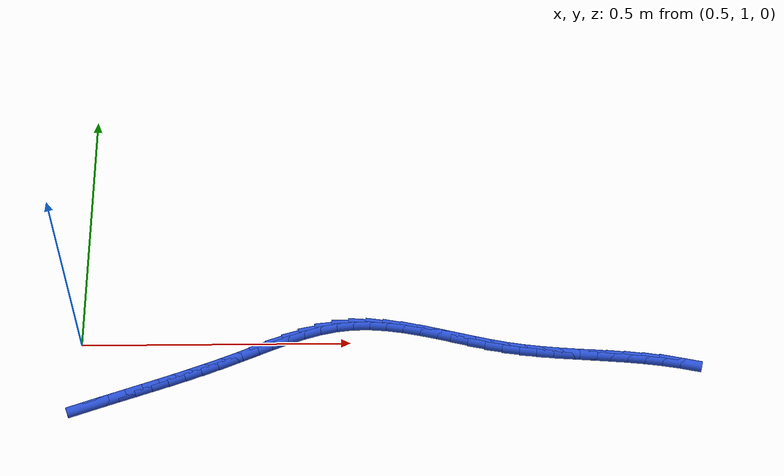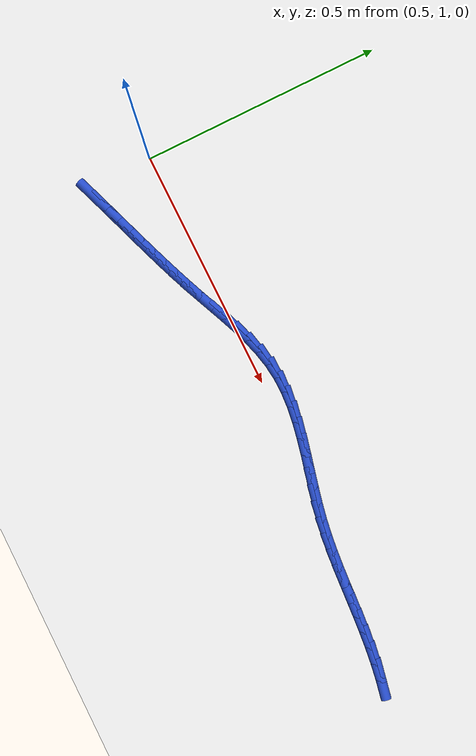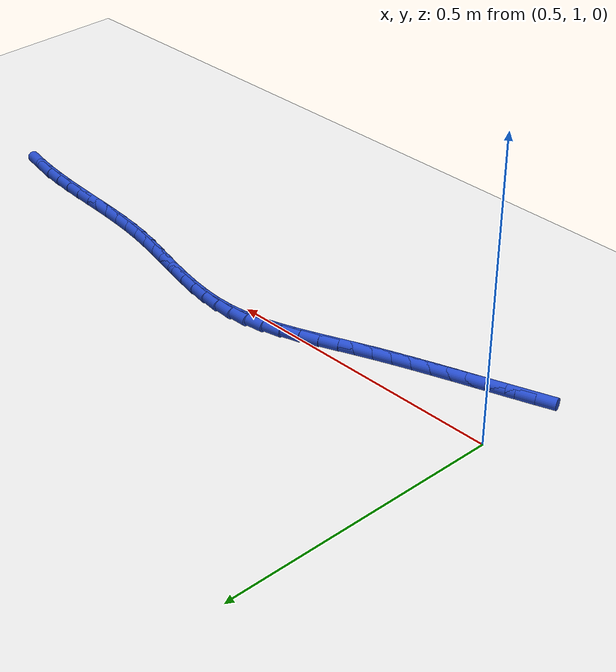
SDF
<sdf version="1.6">
 <world name="default">
  <model name="ground_plane">
   <static>1</static>
   <link name="link">
    <collision name="collision">
     <geometry><plane><normal>0 0 1</normal><size>100 100</size></plane></geometry>
     <surface><friction><ode><mu>100</mu><mu2>50</mu2></ode></friction></surface>
    </collision>
    <visual name="visual">
     <cast_shadows>0</cast_shadows>
     <geometry><plane><normal>0 0 1</normal><size>100 100</size></plane></geometry>
     <material>
      <script><uri>file://media/materials/scripts/gazebo.material</uri><name>Gazebo/WhiteGlow</name></script>
     </material>
    </visual>
   </link>
  </model>
  <model name="line">
   <link name="link_34">
    <pose>0.5196747592132541 0.8676521911824002 0.01 0 1.57 0.3375330570751018</pose>
    <collision name="collision">
     <geometry><cylinder><radius>0.01</radius><length>0.08</length></cylinder></geometry>
    </collision>
    <visual name="visual">
     <material>
      <script><name>Gazebo/Blue</name><uri>file://media/materials/scripts/gazebo.material</uri></script>
     </material>
     <geometry><cylinder><radius>0.01</radius><length>0.08</length></cylinder></geometry>
    </visual>
   </link>
   <link name="link_35">
    <pose>0.5501904814964527 0.8783621008085193 0.01 0 1.57 0.3332415292095401</pose>
    <collision name="collision">
     <geometry><cylinder><radius>0.01</radius><length>0.08</length></cylinder></geometry>
    </collision>
    <visual name="visual">
     <material>
      <script><name>Gazebo/Blue</name><uri>file://media/materials/scripts/gazebo.material</uri></script>
     </material>
     <geometry><cylinder><radius>0.01</radius><length>0.08</length></cylinder></geometry>
    </visual>
   </link>
   <link name="link_36">
    <pose>0.5805403084050387 0.888867715916094 0.01 0 1.57 0.3318586030347969</pose>
    <collision name="collision">
     <geometry><cylinder><radius>0.01</radius><length>0.08</length></cylinder></geometry>
    </collision>
    <visual name="visual">
     <material>
      <script><name>Gazebo/Blue</name><uri>file://media/materials/scripts/gazebo.material</uri></script>
     </material>
     <geometry><cylinder><radius>0.01</radius><length>0.08</length></cylinder></geometry>
    </visual>
   </link>
   <link name="link_37">
    <pose>0.6107540326031021 0.8992794514821613 0.01 0 1.57 0.333436303861949</pose>
    <collision name="collision">
     <geometry><cylinder><radius>0.01</radius><length>0.08</length></cylinder></geometry>
    </collision>
    <visual name="visual">
     <material>
      <script><name>Gazebo/Blue</name><uri>file://media/materials/scripts/gazebo.material</uri></script>
     </material>
     <geometry><cylinder><radius>0.01</radius><length>0.08</length></cylinder></geometry>
    </visual>
   </link>
   <link name="link_38">
    <pose>0.6408614467547329 0.9097077224837575 0.01 0 1.57 0.33799156435182326</pose>
    <collision name="collision">
     <geometry><cylinder><radius>0.01</radius><length>0.08</length></cylinder></geometry>
    </collision>
    <visual name="visual">
     <material>
      <script><name>Gazebo/Blue</name><uri>file://media/materials/scripts/gazebo.material</uri></script>
     </material>
     <geometry><cylinder><radius>0.01</radius><length>0.08</length></cylinder></geometry>
    </visual>
   </link>
   <link name="link_39">
    <pose>0.6708923435240208 0.9202629438979198 0.01 0 1.57 0.3455049410848417</pose>
    <collision name="collision">
     <geometry><cylinder><radius>0.01</radius><length>0.08</length></cylinder></geometry>
    </collision>
    <visual name="visual">
     <material>
      <script><name>Gazebo/Blue</name><uri>file://media/materials/scripts/gazebo.material</uri></script>
     </material>
     <geometry><cylinder><radius>0.01</radius><length>0.08</length></cylinder></geometry>
    </visual>
   </link>
   <link name="link_40">
    <pose>0.700876515575056 0.9310555307016847 0.01 0 1.57 0.35591965508869167</pose>
    <collision name="collision">
     <geometry><cylinder><radius>0.01</radius><length>0.08</length></cylinder></geometry>
    </collision>
    <visual name="visual">
     <material>
      <script><name>Gazebo/Blue</name><uri>file://media/materials/scripts/gazebo.material</uri></script>
     </material>
     <geometry><cylinder><radius>0.01</radius><length>0.08</length></cylinder></geometry>
    </visual>
   </link>
   <link name="link_41">
    <pose>0.7308437555719284 0.942195897872089 0.01 0 1.57 0.3691410917789792</pose>
    <collision name="collision">
     <geometry><cylinder><radius>0.01</radius><length>0.08</length></cylinder></geometry>
    </collision>
    <visual name="visual">
     <material>
      <script><name>Gazebo/Blue</name><uri>file://media/materials/scripts/gazebo.material</uri></script>
     </material>
     <geometry><cylinder><radius>0.01</radius><length>0.08</length></cylinder></geometry>
    </visual>
   </link>
   <link name="link_42">
    <pose>0.7608238561787277 0.9537944603861697 0.01 0 1.57 0.3850367574353418</pose>
    <collision name="collision">
     <geometry><cylinder><radius>0.01</radius><length>0.08</length></cylinder></geometry>
    </collision>
    <visual name="visual">
     <material>
      <script><name>Gazebo/Blue</name><uri>file://media/materials/scripts/gazebo.material</uri></script>
     </material>
     <geometry><cylinder><radius>0.01</radius><length>0.08</length></cylinder></geometry>
    </visual>
   </link>
   <link name="link_43">
    <pose>0.790846610019837 0.9659616262527786 0.01 0 1.57 0.399595309721922</pose>
    <collision name="collision">
     <geometry><cylinder><radius>0.01</radius><length>0.08</length></cylinder></geometry>
    </collision>
    <visual name="visual">
     <material>
      <script><name>Gazebo/Blue</name><uri>file://media/materials/scripts/gazebo.material</uri></script>
     </material>
     <geometry><cylinder><radius>0.01</radius><length>0.08</length></cylinder></geometry>
    </visual>
   </link>
   <link name="link_44">
    <pose>0.8209410301037435 0.9786709894901663 0.01 0 1.57 0.3992236961994275</pose>
    <collision name="collision">
     <geometry><cylinder><radius>0.01</radius><length>0.08</length></cylinder></geometry>
    </collision>
    <visual name="visual">
     <material>
      <script><name>Gazebo/Blue</name><uri>file://media/materials/scripts/gazebo.material</uri></script>
     </material>
     <geometry><cylinder><radius>0.01</radius><length>0.08</length></cylinder></geometry>
    </visual>
   </link>
   <link name="link_45">
    <pose>0.8511333505443315 0.9914084787642047 0.01 0 1.57 0.3809783282690626</pose>
    <collision name="collision">
     <geometry><cylinder><radius>0.01</radius><length>0.08</length></cylinder></geometry>
    </collision>
    <visual name="visual">
     <material>
      <script><name>Gazebo/Blue</name><uri>file://media/materials/scripts/gazebo.material</uri></script>
     </material>
     <geometry><cylinder><radius>0.01</radius><length>0.08</length></cylinder></geometry>
    </visual>
   </link>
   <link name="link_46">
    <pose>0.8814491865583146 1.0035514131136682 0.01 0 1.57 0.3443436118369045</pose>
    <collision name="collision">
     <geometry><cylinder><radius>0.01</radius><length>0.08</length></cylinder></geometry>
    </collision>
    <visual name="visual">
     <material>
      <script><name>Gazebo/Blue</name><uri>file://media/materials/scripts/gazebo.material</uri></script>
     </material>
     <geometry><cylinder><radius>0.01</radius><length>0.08</length></cylinder></geometry>
    </visual>
   </link>
   <link name="link_47">
    <pose>0.9119141533624072 1.0144771115773321 0.01 0 1.57 0.2882759029482726</pose>
    <collision name="collision">
     <geometry><cylinder><radius>0.01</radius><length>0.08</length></cylinder></geometry>
    </collision>
    <visual name="visual">
     <material>
      <script><name>Gazebo/Blue</name><uri>file://media/materials/scripts/gazebo.material</uri></script>
     </material>
     <geometry><cylinder><radius>0.01</radius><length>0.08</length></cylinder></geometry>
    </visual>
   </link>
   <link name="link_48">
    <pose>0.9425538661733233 1.0235628931939709 0.01 0 1.57 0.21154580744749787</pose>
    <collision name="collision">
     <geometry><cylinder><radius>0.01</radius><length>0.08</length></cylinder></geometry>
    </collision>
    <visual name="visual">
     <material>
      <script><name>Gazebo/Blue</name><uri>file://media/materials/scripts/gazebo.material</uri></script>
     </material>
     <geometry><cylinder><radius>0.01</radius><length>0.08</length></cylinder></geometry>
    </visual>
   </link>
   <link name="link_49">
    <pose>0.9733939402077765 1.0301860770023596 0.01 0 1.57 0.11388824594464175</pose>
    <collision name="collision">
     <geometry><cylinder><radius>0.01</radius><length>0.08</length></cylinder></geometry>
    </collision>
    <visual name="visual">
     <material>
      <script><name>Gazebo/Blue</name><uri>file://media/materials/scripts/gazebo.material</uri></script>
     </material>
     <geometry><cylinder><radius>0.01</radius><length>0.08</length></cylinder></geometry>
    </visual>
   </link>
   <link name="link_50">
    <pose>1.004459181032475 1.0337394190032192 0.01 0 1.57 0.011984955771441548</pose>
    <collision name="collision">
     <geometry><cylinder><radius>0.01</radius><length>0.08</length></cylinder></geometry>
    </collision>
    <visual name="visual">
     <material>
      <script><name>Gazebo/Blue</name><uri>file://media/materials/scripts/gazebo.material</uri></script>
     </material>
     <geometry><cylinder><radius>0.01</radius><length>0.08</length></cylinder></geometry>
    </visual>
   </link>
   <link name="link_51">
    <pose>1.0357482348710128 1.0341144348854323 0.01 0 1.57 -0.07347195860439526</pose>
    <collision name="collision">
     <geometry><cylinder><radius>0.01</radius><length>0.08</length></cylinder></geometry>
    </collision>
    <visual name="visual">
     <material>
      <script><name>Gazebo/Blue</name><uri>file://media/materials/scripts/gazebo.material</uri></script>
     </material>
     <geometry><cylinder><radius>0.01</radius><length>0.08</length></cylinder></geometry>
    </visual>
   </link>
   <link name="link_52">
    <pose>1.067228556501514 1.0317973431767844 0.01 0 1.57 -0.14092321967316881</pose>
    <collision name="collision">
     <geometry><cylinder><radius>0.01</radius><length>0.08</length></cylinder></geometry>
    </collision>
    <visual name="visual">
     <material>
      <script><name>Gazebo/Blue</name><uri>file://media/materials/scripts/gazebo.material</uri></script>
     </material>
     <geometry><cylinder><radius>0.01</radius><length>0.08</length></cylinder></geometry>
    </visual>
   </link>
   <link name="link_53">
    <pose>1.0988657748558754 1.027309174383815 0.01 0 1.57 -0.19091640344043287</pose>
    <collision name="collision">
     <geometry><cylinder><radius>0.01</radius><length>0.08</length></cylinder></geometry>
    </collision>
    <visual name="visual">
     <material>
      <script><name>Gazebo/Blue</name><uri>file://media/materials/scripts/gazebo.material</uri></script>
     </material>
     <geometry><cylinder><radius>0.01</radius><length>0.08</length></cylinder></geometry>
    </visual>
   </link>
   <link name="link_54">
    <pose>1.1306255188659904 1.0211709590130635 0.01 0 1.57 -0.22434445367378456</pose>
    <collision name="collision">
     <geometry><cylinder><radius>0.01</radius><length>0.08</length></cylinder></geometry>
    </collision>
    <visual name="visual">
     <material>
      <script><name>Gazebo/Blue</name><uri>file://media/materials/scripts/gazebo.material</uri></script>
     </material>
     <geometry><cylinder><radius>0.01</radius><length>0.08</length></cylinder></geometry>
    </visual>
   </link>
   <link name="link_55">
    <pose>1.1624734174637537 1.0139037275710685 0.01 0 1.57 -0.2420202399970399</pose>
    <collision name="collision">
     <geometry><cylinder><radius>0.01</radius><length>0.08</length></cylinder></geometry>
    </collision>
    <visual name="visual">
     <material>
      <script><name>Gazebo/Blue</name><uri>file://media/materials/scripts/gazebo.material</uri></script>
     </material>
     <geometry><cylinder><radius>0.01</radius><length>0.08</length></cylinder></geometry>
    </visual>
   </link>
   <link name="link_56">
    <pose>1.194375099581061 1.0060285105643703 0.01 0 1.57 -0.24444487658945324</pose>
    <collision name="collision">
     <geometry><cylinder><radius>0.01</radius><length>0.08</length></cylinder></geometry>
    </collision>
    <visual name="visual">
     <material>
      <script><name>Gazebo/Blue</name><uri>file://media/materials/scripts/gazebo.material</uri></script>
     </material>
     <geometry><cylinder><radius>0.01</radius><length>0.08</length></cylinder></geometry>
    </visual>
   </link>
   <link name="link_57">
    <pose>1.2262961941498063 0.9980663384995075 0.01 0 1.57 -0.2317074153687437</pose>
    <collision name="collision">
     <geometry><cylinder><radius>0.01</radius><length>0.08</length></cylinder></geometry>
    </collision>
    <visual name="visual">
     <material>
      <script><name>Gazebo/Blue</name><uri>file://media/materials/scripts/gazebo.material</uri></script>
     </material>
     <geometry><cylinder><radius>0.01</radius><length>0.08</length></cylinder></geometry>
    </visual>
   </link>
   <link name="link_58">
    <pose>1.2582023301018848 0.9905382418830202 0.01 0 1.57 -0.20347389535031427</pose>
    <collision name="collision">
     <geometry><cylinder><radius>0.01</radius><length>0.08</length></cylinder></geometry>
    </collision>
    <visual name="visual">
     <material>
      <script><name>Gazebo/Blue</name><uri>file://media/materials/scripts/gazebo.material</uri></script>
     </material>
     <geometry><cylinder><radius>0.01</radius><length>0.08</length></cylinder></geometry>
    </visual>
   </link>
   <link name="link_59">
    <pose>1.2900591363691911 0.9839652512214471 0.01 0 1.57 -0.16301592677326354</pose>
    <collision name="collision">
     <geometry><cylinder><radius>0.01</radius><length>0.08</length></cylinder></geometry>
    </collision>
    <visual name="visual">
     <material>
      <script><name>Gazebo/Blue</name><uri>file://media/materials/scripts/gazebo.material</uri></script>
     </material>
     <geometry><cylinder><radius>0.01</radius><length>0.08</length></cylinder></geometry>
    </visual>
   </link>
   <link name="link_60">
    <pose>1.3218439203575756 0.9787374346189551 0.01 0 1.57 -0.12669041119045063</pose>
    <collision name="collision">
     <geometry><cylinder><radius>0.01</radius><length>0.08</length></cylinder></geometry>
    </collision>
    <visual name="visual">
     <material>
      <script><name>Gazebo/Blue</name><uri>file://media/materials/scripts/gazebo.material</uri></script>
     </material>
     <geometry><cylinder><radius>0.01</radius><length>0.08</length></cylinder></geometry>
    </visual>
   </link>
   <link name="link_61">
    <pose>1.3535830460704898 0.9746947395133077 0.01 0 1.57 -0.09931853524672662</pose>
    <collision name="collision">
     <geometry><cylinder><radius>0.01</radius><length>0.08</length></cylinder></geometry>
    </collision>
    <visual name="visual">
     <material>
      <script><name>Gazebo/Blue</name><uri>file://media/materials/scripts/gazebo.material</uri></script>
     </material>
     <geometry><cylinder><radius>0.01</radius><length>0.08</length></cylinder></geometry>
    </visual>
   </link>
   <link name="link_62">
    <pose>1.3853157564118472 0.9715326893575623 0.01 0 1.57 -0.08122616724734065</pose>
    <collision name="collision">
     <geometry><cylinder><radius>0.01</radius><length>0.08</length></cylinder></geometry>
    </collision>
    <visual name="visual">
     <material>
      <script><name>Gazebo/Blue</name><uri>file://media/materials/scripts/gazebo.material</uri></script>
     </material>
     <geometry><cylinder><radius>0.01</radius><length>0.08</length></cylinder></geometry>
    </visual>
   </link>
   <link name="link_63">
    <pose>1.4170812943387743 0.9689468070080014 0.01 0 1.57 -0.07255975022171056</pose>
    <collision name="collision">
     <geometry><cylinder><radius>0.01</radius><length>0.08</length></cylinder></geometry>
    </collision>
    <visual name="visual">
     <material>
      <script><name>Gazebo/Blue</name><uri>file://media/materials/scripts/gazebo.material</uri></script>
     </material>
     <geometry><cylinder><radius>0.01</radius><length>0.08</length></cylinder></geometry>
    </visual>
   </link>
   <link name="link_64">
    <pose>1.448918902808399 0.9666326153209082 0.01 0 1.57 -0.07332860959001396</pose>
    <collision name="collision">
     <geometry><cylinder><radius>0.01</radius><length>0.08</length></cylinder></geometry>
    </collision>
    <visual name="visual">
     <material>
      <script><name>Gazebo/Blue</name><uri>file://media/materials/scripts/gazebo.material</uri></script>
     </material>
     <geometry><cylinder><radius>0.01</radius><length>0.08</length></cylinder></geometry>
    </visual>
   </link>
   <link name="link_65">
    <pose>1.4808678247778504 0.9642856371525648 0.01 0 1.57 -0.08342849513916002</pose>
    <collision name="collision">
     <geometry><cylinder><radius>0.01</radius><length>0.08</length></cylinder></geometry>
    </collision>
    <visual name="visual">
     <material>
      <script><name>Gazebo/Blue</name><uri>file://media/materials/scripts/gazebo.material</uri></script>
     </material>
     <geometry><cylinder><radius>0.01</radius><length>0.08</length></cylinder></geometry>
    </visual>
   </link>
   <link name="link_66">
    <pose>1.5129673032042559 0.9616013953592545 0.01 0 1.57 -0.10264378768267576</pose>
    <collision name="collision">
     <geometry><cylinder><radius>0.01</radius><length>0.08</length></cylinder></geometry>
    </collision>
    <visual name="visual">
     <material>
      <script><name>Gazebo/Blue</name><uri>file://media/materials/scripts/gazebo.material</uri></script>
     </material>
     <geometry><cylinder><radius>0.01</radius><length>0.08</length></cylinder></geometry>
    </visual>
   </link>
   <link name="link_67">
    <pose>1.5452565810447425 0.9582754127972594 0.01 0 1.57 -0.13062489858151444</pose>
    <collision name="collision">
     <geometry><cylinder><radius>0.01</radius><length>0.08</length></cylinder></geometry>
    </collision>
    <visual name="visual">
     <material>
      <script><name>Gazebo/Blue</name><uri>file://media/materials/scripts/gazebo.material</uri></script>
     </material>
     <geometry><cylinder><radius>0.01</radius><length>0.08</length></cylinder></geometry>
    </visual>
   </link>
   <link name="link_68">
    <pose>1.5777744539581673 0.9540034439205473 0.01 0 1.57 -0.16591214464404036</pose>
    <collision name="collision">
     <geometry><cylinder><radius>0.01</radius><length>0.08</length></cylinder></geometry>
    </collision>
    <visual name="visual">
     <material>
      <script><name>Gazebo/Blue</name><uri>file://media/materials/scripts/gazebo.material</uri></script>
     </material>
     <geometry><cylinder><radius>0.01</radius><length>0.08</length></cylinder></geometry>
    </visual>
   </link>
   <link name="link_69">
    <pose>1.6104676269250393 0.9485289249855973 0.01 0 1.57 -0.2063935028493118</pose>
    <collision name="collision">
     <geometry><cylinder><radius>0.01</radius><length>0.08</length></cylinder></geometry>
    </collision>
    <visual name="visual">
     <material>
      <script><name>Gazebo/Blue</name><uri>file://media/materials/scripts/gazebo.material</uri></script>
     </material>
     <geometry><cylinder><radius>0.01</radius><length>0.08</length></cylinder></geometry>
    </visual>
   </link>
  </model>
 </world>
</sdf>
